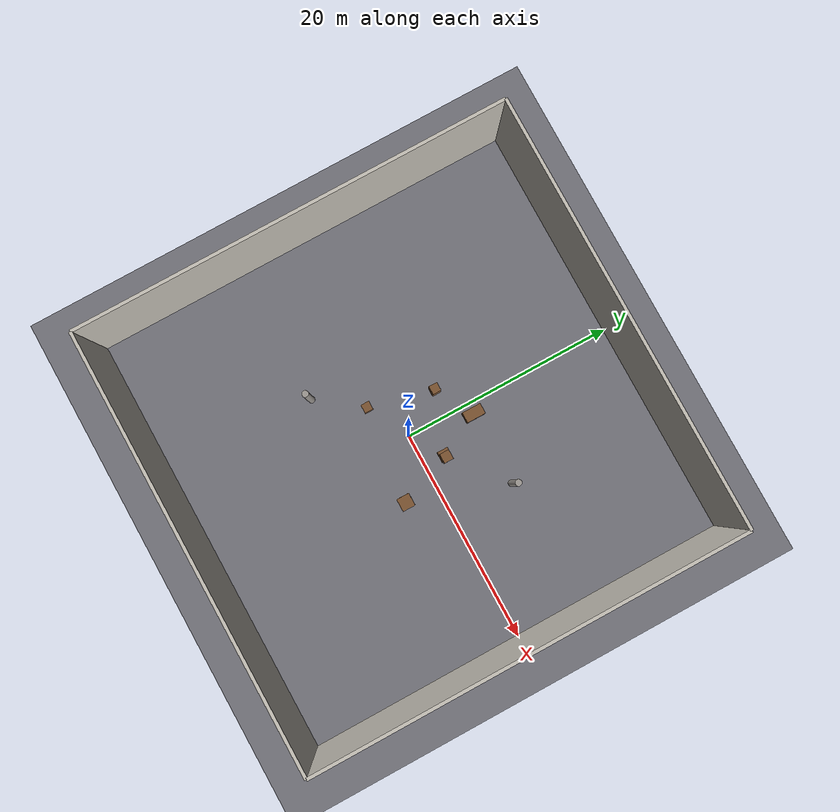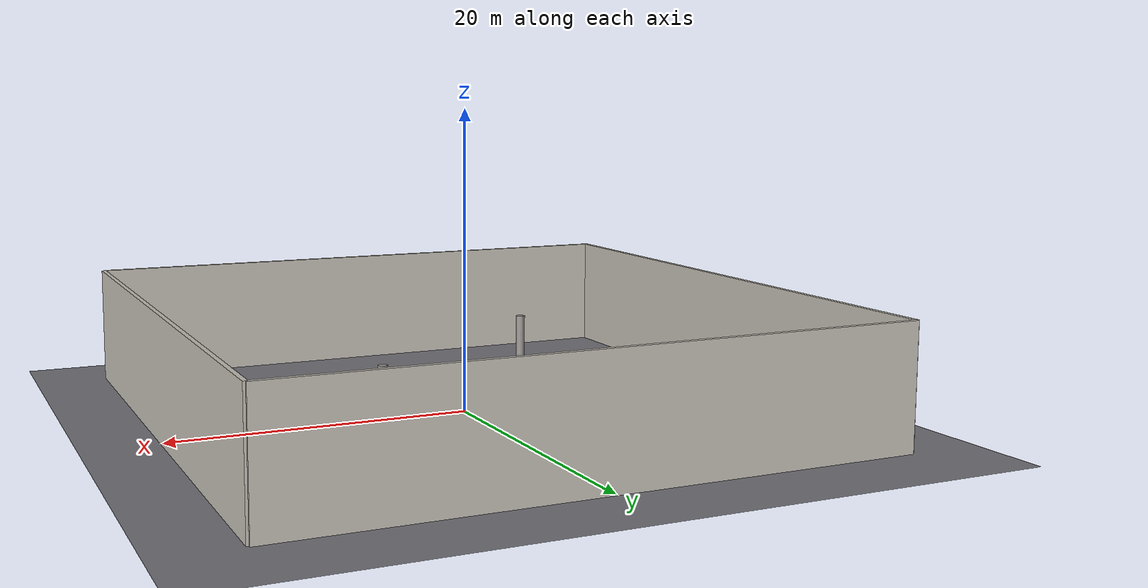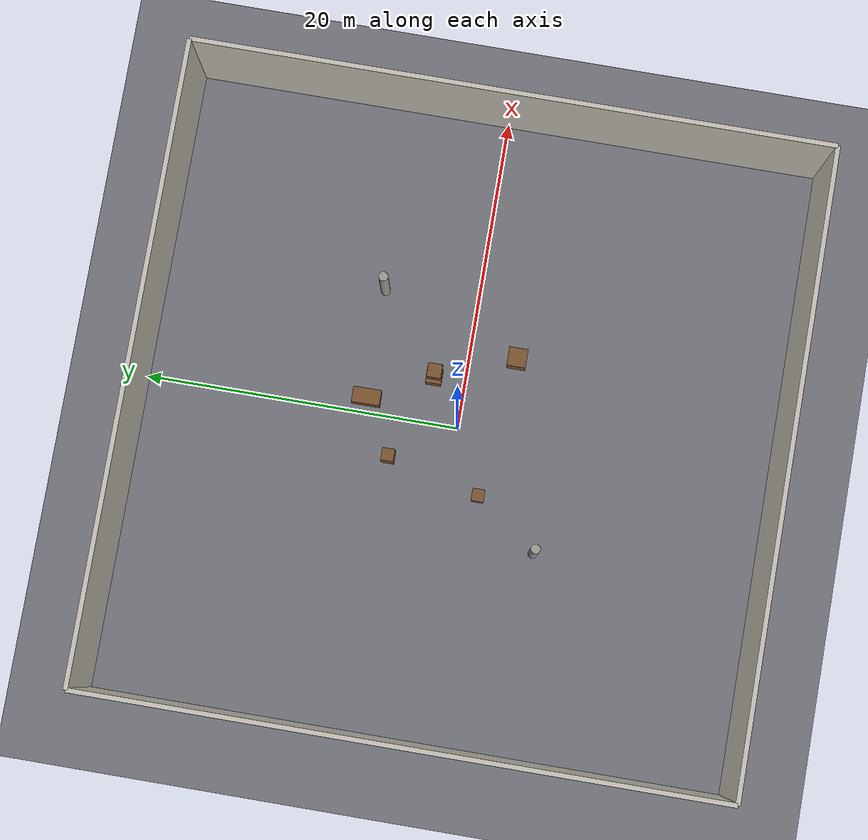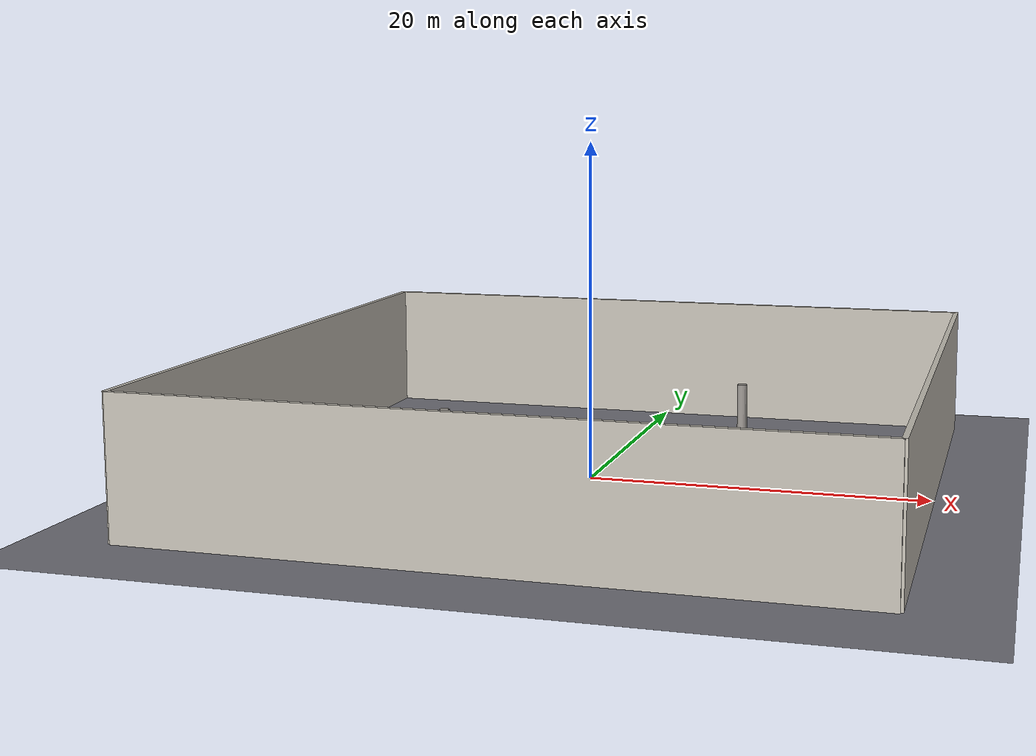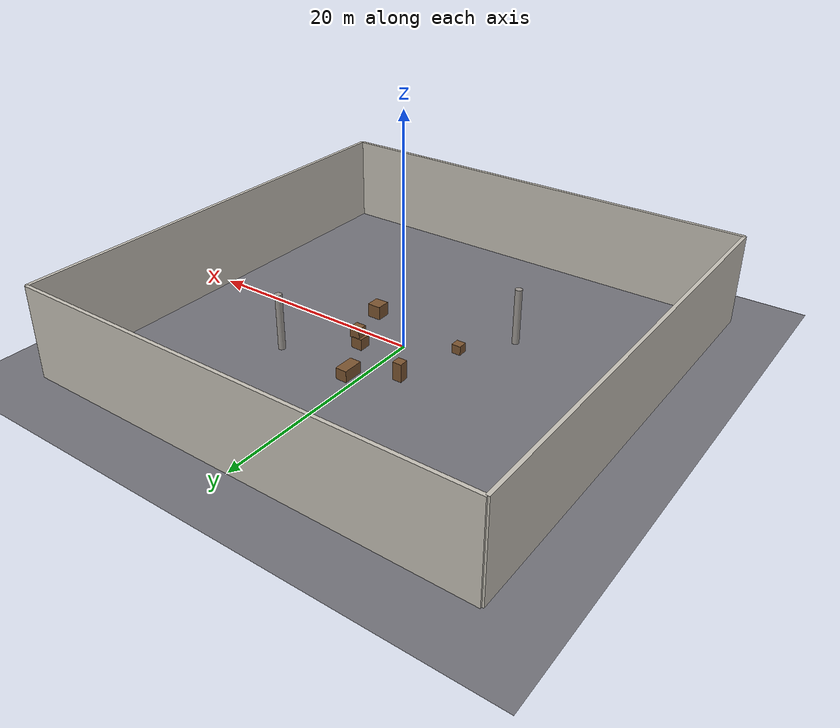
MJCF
<mujoco model="scene_warehouse">

  <include file="common_assets.xml"/>

  <option gravity="0 0 -9.81"/>

  <visual>
    <headlight ambient="0.35 0.35 0.35" diffuse="0.5 0.5 0.5" specular="0.1 0.1 0.1"/>
    <rgba haze="0.6 0.6 0.65 1"/>
  </visual>

  <worldbody>
    <!-- Lighting: randomize pos/dir per episode at reset via scene_loader.py -->
    <light name="key_light" pos="4 -3 6" dir="-0.4 0.3 -1" diffuse="0.8 0.8 0.75" specular="0.2 0.2 0.2" castshadow="true"/>
    <light name="fill_light" pos="-4 4 5" dir="0.3 -0.3 -1" diffuse="0.3 0.3 0.32" castshadow="false"/>

    <!-- Floor -->
    <geom name="floor" type="plane" size="25 25 0.1" material="mat_floor_checker" pos="0 0 0"/>

    <!-- Walls: 4 panels forming a loose warehouse boundary, far enough apart
         to give the drone room to follow without early clipping -->
    <geom name="wall_north" type="box" size="20 0.15 4" pos="0 20 4" material="mat_wall"/>
    <geom name="wall_south" type="box" size="20 0.15 4" pos="0 -20 4" material="mat_wall"/>
    <geom name="wall_east"  type="box" size="0.15 20 4" pos="20 0 4" material="mat_wall"/>
    <geom name="wall_west"  type="box" size="0.15 20 4" pos="-20 0 4" material="mat_wall"/>

    <!-- Static crate clutter — scattered, varied heights, gives the vision
         head non-trivial mid-ground geometry to key off besides the tag -->
    <geom name="crate_01" type="box" size="0.5 0.5 0.5" pos="3 2 0.5" material="mat_crate"/>
    <geom name="crate_02" type="box" size="0.4 0.4 0.8" pos="-2.5 4 0.8" material="mat_crate"/>
    <geom name="crate_03" type="box" size="0.6 0.6 0.6" pos="5 -3 0.6" material="mat_crate"/>
    <geom name="crate_04" type="box" size="0.4 0.4 0.4" pos="-4 -2 0.4" material="mat_crate"/>
    <geom name="crate_05" type="box" size="0.5 0.9 0.5" pos="1 6 0.5" material="mat_crate"/>
    <geom name="crate_stack_a" type="box" size="0.45 0.45 0.45" pos="3.2 2 1.4" material="mat_crate"/>

    <!-- Concrete block pillars for stronger vertical parallax at distance -->
    <geom name="pillar_01" type="cylinder" size="0.3 2.5" pos="8 6 2.5" material="mat_concrete_block"/>
    <geom name="pillar_02" type="cylinder" size="0.3 2.5" pos="-7 -6 2.5" material="mat_concrete_block"/>
  </worldbody>
</mujoco>

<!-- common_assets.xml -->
<mujoco model="common_assets">

  <asset>
    <!-- Skybox: gradient sky, shared by outdoor-facing scenes -->
    <texture name="sky_gradient" type="skybox" builtin="gradient"
             rgb1="0.45 0.62 0.85" rgb2="0.9 0.95 1.0" width="512" height="512"/>

    <!-- Ground textures -->
    <texture name="floor_checker" type="2d" builtin="checker"
              rgb1="0.55 0.55 0.58" rgb2="0.35 0.35 0.38"
              width="512" height="512" mark="edge" markrgb="0.2 0.2 0.2"/>
    <material name="mat_floor_checker" texture="floor_checker"
              texrepeat="12 12" reflectance="0.05" specular="0.1" shininess="0.05"/>

    <texture name="ground_concrete" type="2d" builtin="flat" rgb1="0.56 0.55 0.53"
              width="512" height="512"/>
    <material name="mat_concrete" texture="ground_concrete"
              texrepeat="10 10" reflectance="0.03" specular="0.05" shininess="0.02"/>

    <texture name="ground_grass" type="2d" builtin="checker" rgb1="0.22 0.4 0.16" rgb2="0.26 0.44 0.18"
              width="256" height="256"/>
    <material name="mat_grass" texture="ground_grass"
              texrepeat="24 24" reflectance="0.0" specular="0.02" shininess="0.01"/>

    <!-- Wall / panel texture (warehouse interior) -->
    <texture name="wall_panel" type="2d" builtin="flat" rgb1="0.78 0.76 0.72"
              width="256" height="256"/>
    <material name="mat_wall" texture="wall_panel" texrepeat="4 2"
              reflectance="0.02" specular="0.05" shininess="0.02"/>

    <!-- Crate / prop textures -->
    <texture name="crate_wood" type="2d" builtin="checker" rgb1="0.55 0.38 0.22" rgb2="0.42 0.28 0.16"
              width="128" height="128" mark="cross" markrgb="0.3 0.2 0.1"/>
    <material name="mat_crate" texture="crate_wood" texrepeat="2 2"
              reflectance="0.02" specular="0.1" shininess="0.05"/>

    <material name="mat_concrete_block" rgba="0.62 0.6 0.58 1" reflectance="0.03"/>
  </asset>

</mujoco>
